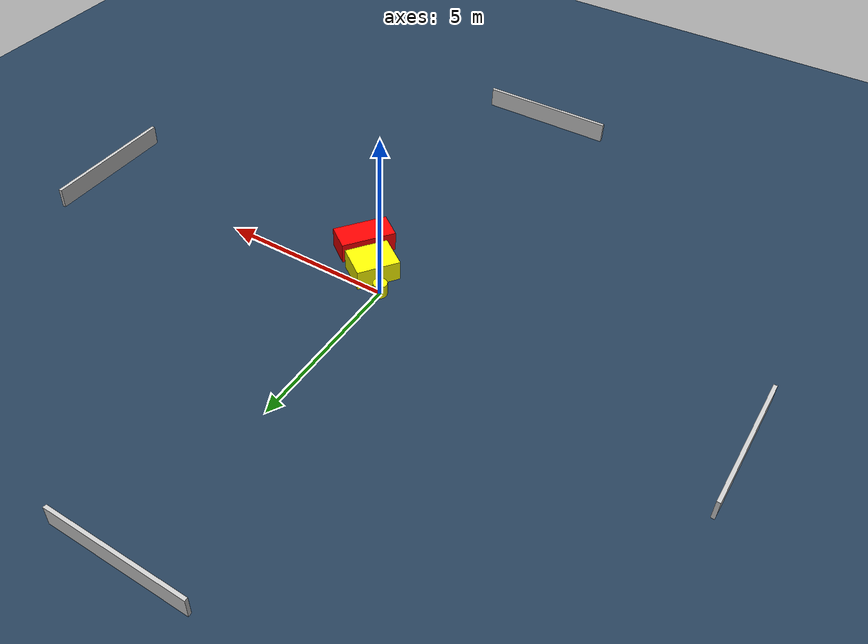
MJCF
<?xml version="1.0" ?>
<mujoco model="generated_environment">
  <option timestep="0.01" integrator="RK4" cone="elliptic"/>
  <default>
    <geom density="1"/>
  </default>
  <asset>
    <texture builtin="gradient" height="3072" name="skybox" rgb1="0.3 0.5 0.7" rgb2="0 0 0" type="skybox" width="512"/>
    <texture builtin="checker" height="300" name="groundplane" rgb1="0.2 0.3 0.4" rgb2="0.1 0.2 0.3" type="2d" width="300"/>
    <material name="groundplane" reflectance="0.2" texrepeat="5 5" texture="groundplane"/>
  </asset>
  <worldbody>
    <light dir="0 0 -1" directional="true" pos="0 0 1.5"/>
    <geom condim="3" friction="0.5 0.005 0.001" material="groundplane" name="floor" pos="0 0 0" size="0 0 0.05" type="plane"/>
    <body name="walls">
      <geom name="wall_1" condim="4" pos="-10.0 0.0 0.3" rgba="0.800000011920929 0.800000011920929 0.800000011920929 1.0" size="0.05 2.0 0.3" type="box"/>
      <geom name="wall_2" condim="4" pos="10.0 0.0 0.3" rgba="0.800000011920929 0.800000011920929 0.800000011920929 1.0" size="0.05 2.0 0.3" type="box"/>
      <geom name="wall_3" condim="4" pos="0.0 -10.0 0.3" rgba="0.800000011920929 0.800000011920929 0.800000011920929 1.0" size="2.0 0.05 0.3" type="box"/>
      <geom name="wall_4" condim="4" pos="0.0 10.0 0.3" rgba="0.800000011920929 0.800000011920929 0.800000011920929 1.0" size="2.0 0.05 0.3" type="box"/>
    </body>
    <body name="robot">
      <joint name="joint_x" type="slide" pos="0 0 0" axis="1 0 0"/>
      <joint name="joint_y" type="slide" pos="0 0 0" axis="0 1 0"/>
      <geom name="robot" type="cylinder" pos="0.0 0.0 0.2" size="0.2 0.2 0.0" mass="5.0" friction="1.0 0.005 0.0001" condim="4" rgba="1.0 1.0 0.0 1.0"/>
    </body>
    <body name="obstacle_1_movable">
      <geom name="obstacle_1_movable" condim="4" pos="0.6434593479259897 -0.5946101754064684 0.3" euler="0 0 234.14264507475855" friction="0.0 0.005 0.001" rgba="1.0 1.0 0.0 1.0" size="0.6239763438112718 0.5038722192086154 0.3" type="box" mass="0.1"/>
      <joint type="free"/>
    </body>
    <body name="obstacle_2_static">
      <geom name="obstacle_2_static" condim="4" pos="1.4382310805834169 -1.3742796212102355 0.3" euler="0 0 53.55173912585978" friction="0.0 0.005 0.001" rgba="1.0 0.0 0.0 1.0" size="0.7938743863110522 0.3991831584287462 0.3" type="box"/>
    </body>
  </worldbody>
  <actuator>
    <motor name="actuator_x" joint="joint_x" gear="1" ctrlrange="-1 1"/>
    <motor name="actuator_y" joint="joint_y" gear="1" ctrlrange="-1 1"/>
  </actuator>
</mujoco>
